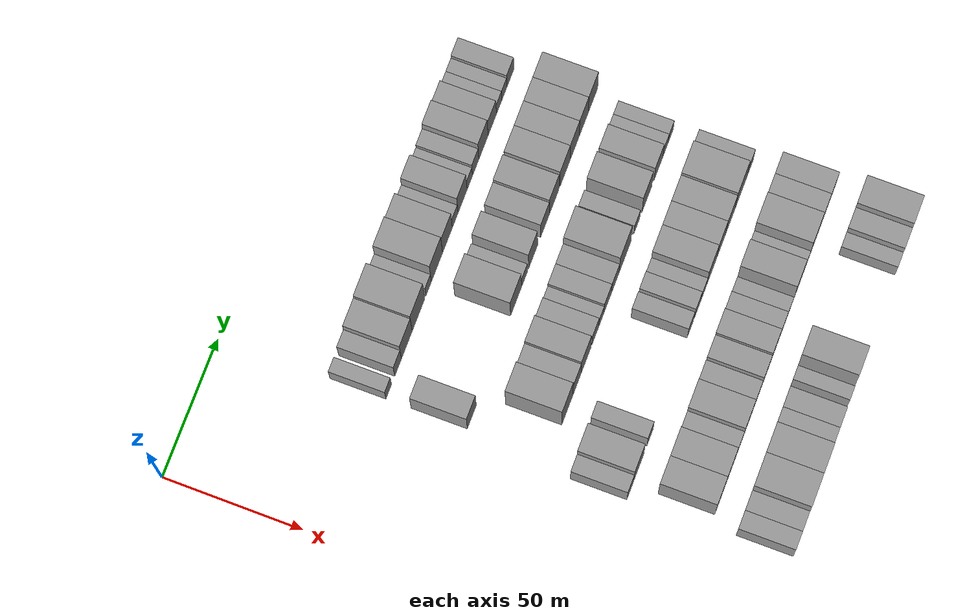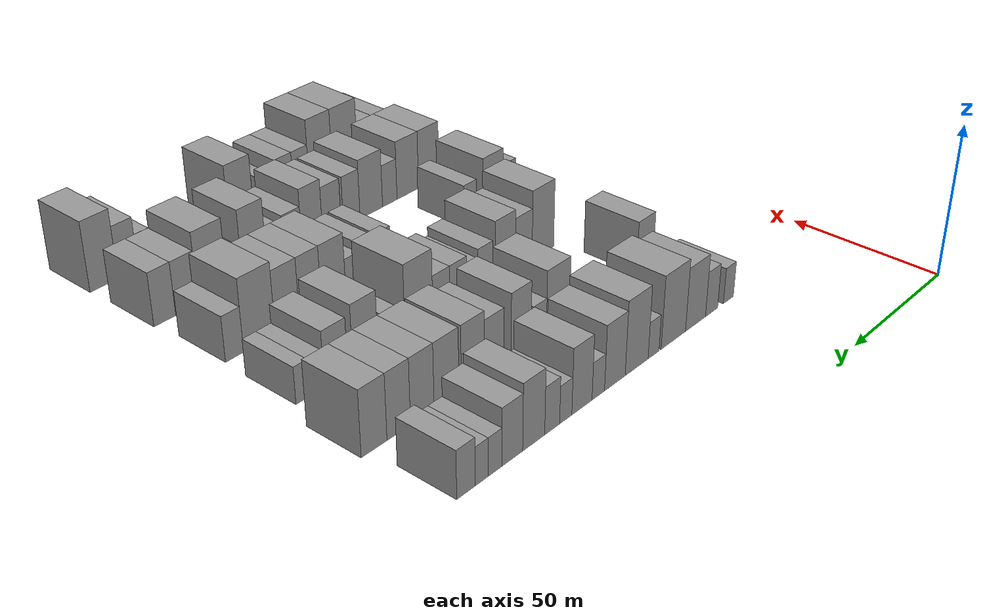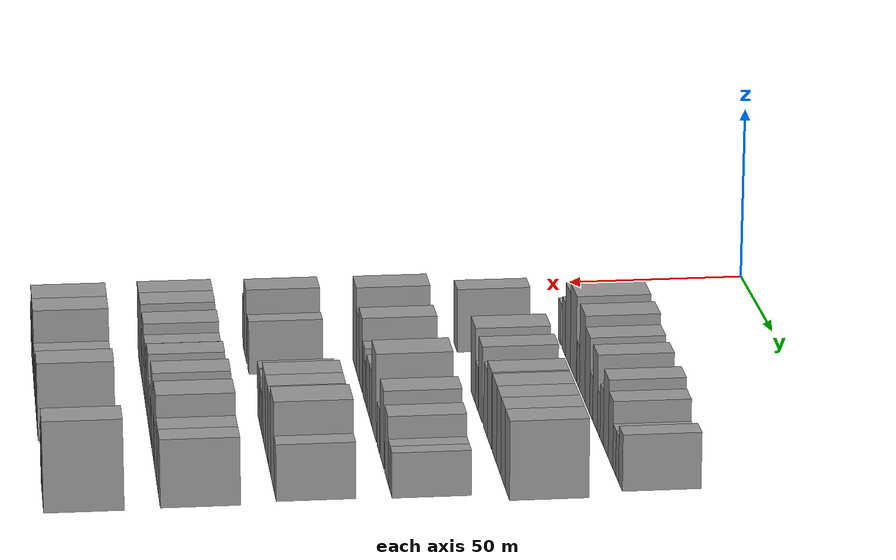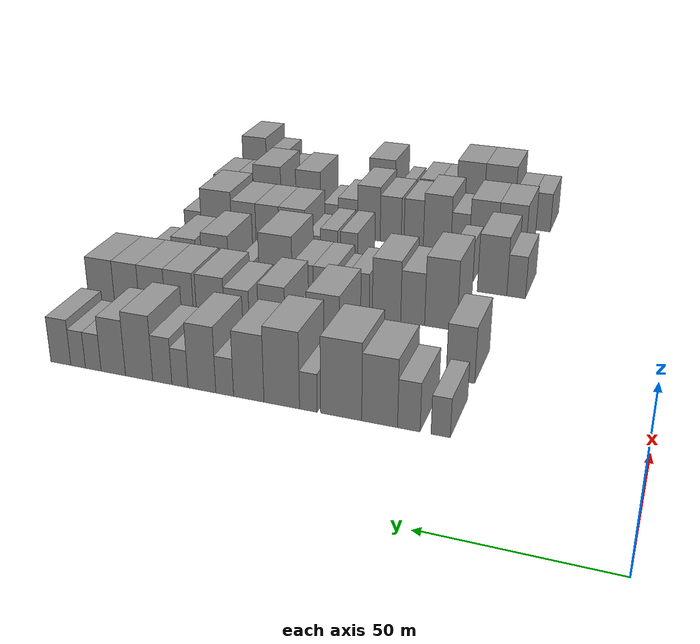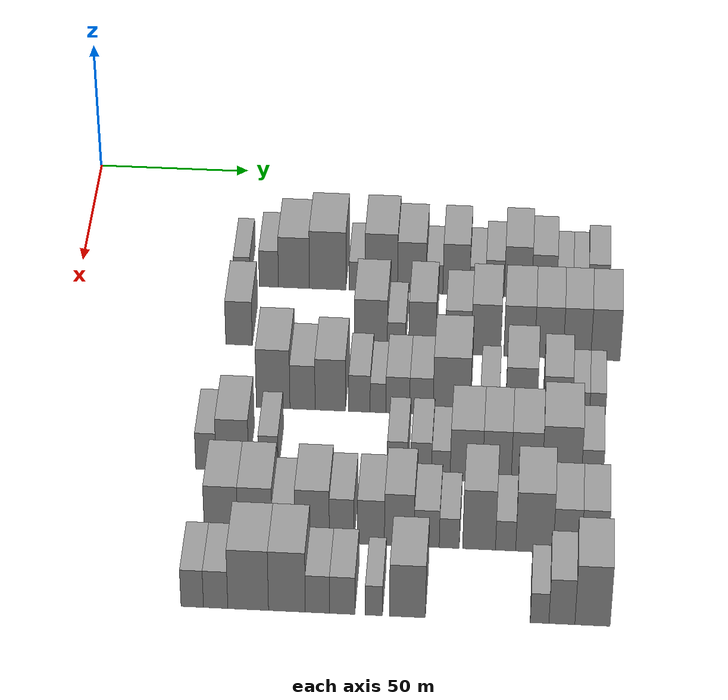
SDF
<sdf version="1.6">
 <world name="default">
  <model name="building_64">
   <static>1</static>
   <pose>50.0000 53.2719 0 0.000000 0.000000 0.000000</pose>
   <link name="link">
    <pose>0 0 6.00 0 0 0</pose>
    <collision name="collision"><geometry><box><size>20.0000 5.2601 12.0000</size></box></geometry></collision>
    <visual name="visual">
     <cast_shadows>0</cast_shadows>
     <geometry><box><size>20.0000 5.2601 12.0000</size></box></geometry>
     <material>
      <script>
       <uri>model://grey_wall/materials/scripts</uri>
       <uri>model://grey_wall/materials/textures</uri>
       <name>vrc/grey_wall</name>
      </script>
     </material>
    </visual>
   </link>
  </model>
  <model name="building_65">
   <static>1</static>
   <pose>50.0000 62.0381 0 0.000000 0.000000 0.000000</pose>
   <link name="link">
    <pose>0 0 7.50 0 0 0</pose>
    <collision name="collision"><geometry><box><size>20.0000 6.2723 15.0000</size></box></geometry></collision>
    <visual name="visual">
     <cast_shadows>0</cast_shadows>
     <geometry><box><size>20.0000 6.2723 15.0000</size></box></geometry>
     <material>
      <script>
       <uri>model://grey_wall/materials/scripts</uri>
       <uri>model://grey_wall/materials/textures</uri>
       <name>vrc/grey_wall</name>
      </script>
     </material>
    </visual>
   </link>
  </model>
  <model name="building_66">
   <static>1</static>
   <pose>50.0000 70.2058 0 0.000000 0.000000 0.000000</pose>
   <link name="link">
    <pose>0 0 10.50 0 0 0</pose>
    <collision name="collision"><geometry><box><size>20.0000 10.0632 21.0000</size></box></geometry></collision>
    <visual name="visual">
     <cast_shadows>0</cast_shadows>
     <geometry><box><size>20.0000 10.0632 21.0000</size></box></geometry>
     <material>
      <script>
       <uri>model://grey_wall/materials/scripts</uri>
       <uri>model://grey_wall/materials/textures</uri>
       <name>vrc/grey_wall</name>
      </script>
     </material>
    </visual>
   </link>
  </model>
  <model name="building_67">
   <static>1</static>
   <pose>50.0000 81.1623 0 0.000000 0.000000 0.000000</pose>
   <link name="link">
    <pose>0 0 12.00 0 0 0</pose>
    <collision name="collision"><geometry><box><size>20.0000 11.8498 24.0000</size></box></geometry></collision>
    <visual name="visual">
     <cast_shadows>0</cast_shadows>
     <geometry><box><size>20.0000 11.8498 24.0000</size></box></geometry>
     <material>
      <script>
       <uri>model://grey_wall/materials/scripts</uri>
       <uri>model://grey_wall/materials/textures</uri>
       <name>vrc/grey_wall</name>
      </script>
     </material>
    </visual>
   </link>
  </model>
  <model name="building_68">
   <static>1</static>
   <pose>50.0000 90.6826 0 0.000000 0.000000 0.000000</pose>
   <link name="link">
    <pose>0 0 6.00 0 0 0</pose>
    <collision name="collision"><geometry><box><size>20.0000 5.1908 12.0000</size></box></geometry></collision>
    <visual name="visual">
     <cast_shadows>0</cast_shadows>
     <geometry><box><size>20.0000 5.1908 12.0000</size></box></geometry>
     <material>
      <script>
       <uri>model://grey_wall/materials/scripts</uri>
       <uri>model://grey_wall/materials/textures</uri>
       <name>vrc/grey_wall</name>
      </script>
     </material>
    </visual>
   </link>
  </model>
  <model name="building_69">
   <static>1</static>
   <pose>50.0000 98.5675 0 0.000000 0.000000 0.000000</pose>
   <link name="link">
    <pose>0 0 12.00 0 0 0</pose>
    <collision name="collision"><geometry><box><size>20.0000 10.5790 24.0000</size></box></geometry></collision>
    <visual name="visual">
     <cast_shadows>0</cast_shadows>
     <geometry><box><size>20.0000 10.5790 24.0000</size></box></geometry>
     <material>
      <script>
       <uri>model://grey_wall/materials/scripts</uri>
       <uri>model://grey_wall/materials/textures</uri>
       <name>vrc/grey_wall</name>
      </script>
     </material>
    </visual>
   </link>
  </model>
  <model name="building_70">
   <static>1</static>
   <pose>50.0000 108.4797 0 0.000000 0.000000 0.000000</pose>
   <link name="link">
    <pose>0 0 10.50 0 0 0</pose>
    <collision name="collision"><geometry><box><size>20.0000 9.2453 21.0000</size></box></geometry></collision>
    <visual name="visual">
     <cast_shadows>0</cast_shadows>
     <geometry><box><size>20.0000 9.2453 21.0000</size></box></geometry>
     <material>
      <script>
       <uri>model://grey_wall/materials/scripts</uri>
       <uri>model://grey_wall/materials/textures</uri>
       <name>vrc/grey_wall</name>
      </script>
     </material>
    </visual>
   </link>
  </model>
  <model name="building_71">
   <static>1</static>
   <pose>50.0000 115.8319 0 0.000000 0.000000 0.000000</pose>
   <link name="link">
    <pose>0 0 6.00 0 0 0</pose>
    <collision name="collision"><geometry><box><size>20.0000 5.4591 12.0000</size></box></geometry></collision>
    <visual name="visual">
     <cast_shadows>0</cast_shadows>
     <geometry><box><size>20.0000 5.4591 12.0000</size></box></geometry>
     <material>
      <script>
       <uri>model://grey_wall/materials/scripts</uri>
       <uri>model://grey_wall/materials/textures</uri>
       <name>vrc/grey_wall</name>
      </script>
     </material>
    </visual>
   </link>
  </model>
  <model name="building_72">
   <static>1</static>
   <pose>50.0000 122.8837 0 0.000000 0.000000 0.000000</pose>
   <link name="link">
    <pose>0 0 10.50 0 0 0</pose>
    <collision name="collision"><geometry><box><size>20.0000 8.6444 21.0000</size></box></geometry></collision>
    <visual name="visual">
     <cast_shadows>0</cast_shadows>
     <geometry><box><size>20.0000 8.6444 21.0000</size></box></geometry>
     <material>
      <script>
       <uri>model://grey_wall/materials/scripts</uri>
       <uri>model://grey_wall/materials/textures</uri>
       <name>vrc/grey_wall</name>
      </script>
     </material>
    </visual>
   </link>
  </model>
  <model name="building_73">
   <static>1</static>
   <pose>50.0000 129.7595 0 0.000000 0.000000 0.000000</pose>
   <link name="link">
    <pose>0 0 6.00 0 0 0</pose>
    <collision name="collision"><geometry><box><size>20.0000 5.1073 12.0000</size></box></geometry></collision>
    <visual name="visual">
     <cast_shadows>0</cast_shadows>
     <geometry><box><size>20.0000 5.1073 12.0000</size></box></geometry>
     <material>
      <script>
       <uri>model://grey_wall/materials/scripts</uri>
       <uri>model://grey_wall/materials/textures</uri>
       <name>vrc/grey_wall</name>
      </script>
     </material>
    </visual>
   </link>
  </model>
  <model name="building_74">
   <static>1</static>
   <pose>50.0000 135.3687 0 0.000000 0.000000 0.000000</pose>
   <link name="link">
    <pose>0 0 7.50 0 0 0</pose>
    <collision name="collision"><geometry><box><size>20.0000 6.1111 15.0000</size></box></geometry></collision>
    <visual name="visual">
     <cast_shadows>0</cast_shadows>
     <geometry><box><size>20.0000 6.1111 15.0000</size></box></geometry>
     <material>
      <script>
       <uri>model://grey_wall/materials/scripts</uri>
       <uri>model://grey_wall/materials/textures</uri>
       <name>vrc/grey_wall</name>
      </script>
     </material>
    </visual>
   </link>
  </model>
  <model name="building_75">
   <static>1</static>
   <pose>50.0000 142.8387 0 0.000000 0.000000 0.000000</pose>
   <link name="link">
    <pose>0 0 10.50 0 0 0</pose>
    <collision name="collision"><geometry><box><size>20.0000 8.8288 21.0000</size></box></geometry></collision>
    <visual name="visual">
     <cast_shadows>0</cast_shadows>
     <geometry><box><size>20.0000 8.8288 21.0000</size></box></geometry>
     <material>
      <script>
       <uri>model://grey_wall/materials/scripts</uri>
       <uri>model://grey_wall/materials/textures</uri>
       <name>vrc/grey_wall</name>
      </script>
     </material>
    </visual>
   </link>
  </model>
  <model name="building_76">
   <static>1</static>
   <pose>50.0000 151.2692 0 0.000000 0.000000 0.000000</pose>
   <link name="link">
    <pose>0 0 9.00 0 0 0</pose>
    <collision name="collision"><geometry><box><size>20.0000 8.0323 18.0000</size></box></geometry></collision>
    <visual name="visual">
     <cast_shadows>0</cast_shadows>
     <geometry><box><size>20.0000 8.0323 18.0000</size></box></geometry>
     <material>
      <script>
       <uri>model://grey_wall/materials/scripts</uri>
       <uri>model://grey_wall/materials/textures</uri>
       <name>vrc/grey_wall</name>
      </script>
     </material>
    </visual>
   </link>
  </model>
  <model name="building_77">
   <static>1</static>
   <pose>50.0000 157.8927 0 0.000000 0.000000 0.000000</pose>
   <link name="link">
    <pose>0 0 6.00 0 0 0</pose>
    <collision name="collision"><geometry><box><size>20.0000 5.2147 12.0000</size></box></geometry></collision>
    <visual name="visual">
     <cast_shadows>0</cast_shadows>
     <geometry><box><size>20.0000 5.2147 12.0000</size></box></geometry>
     <material>
      <script>
       <uri>model://grey_wall/materials/scripts</uri>
       <uri>model://grey_wall/materials/textures</uri>
       <name>vrc/grey_wall</name>
      </script>
     </material>
    </visual>
   </link>
  </model>
  <model name="building_78">
   <static>1</static>
   <pose>50.0000 162.9480 0 0.000000 0.000000 0.000000</pose>
   <link name="link">
    <pose>0 0 6.00 0 0 0</pose>
    <collision name="collision"><geometry><box><size>20.0000 4.8960 12.0000</size></box></geometry></collision>
    <visual name="visual">
     <cast_shadows>0</cast_shadows>
     <geometry><box><size>20.0000 4.8960 12.0000</size></box></geometry>
     <material>
      <script>
       <uri>model://grey_wall/materials/scripts</uri>
       <uri>model://grey_wall/materials/textures</uri>
       <name>vrc/grey_wall</name>
      </script>
     </material>
    </visual>
   </link>
  </model>
  <model name="building_79">
   <static>1</static>
   <pose>50.0000 168.7888 0 0.000000 0.000000 0.000000</pose>
   <link name="link">
    <pose>0 0 7.50 0 0 0</pose>
    <collision name="collision"><geometry><box><size>20.0000 6.7857 15.0000</size></box></geometry></collision>
    <visual name="visual">
     <cast_shadows>0</cast_shadows>
     <geometry><box><size>20.0000 6.7857 15.0000</size></box></geometry>
     <material>
      <script>
       <uri>model://grey_wall/materials/scripts</uri>
       <uri>model://grey_wall/materials/textures</uri>
       <name>vrc/grey_wall</name>
      </script>
     </material>
    </visual>
   </link>
  </model>
  <model name="building_181">
   <static>1</static>
   <pose>79.0000 54.9197 0 0.000000 0.000000 0.000000</pose>
   <link name="link">
    <pose>0 0 9.00 0 0 0</pose>
    <collision name="collision"><geometry><box><size>20.0000 8.4533 18.0000</size></box></geometry></collision>
    <visual name="visual">
     <cast_shadows>0</cast_shadows>
     <geometry><box><size>20.0000 8.4533 18.0000</size></box></geometry>
     <material>
      <script>
       <uri>model://grey_wall/materials/scripts</uri>
       <uri>model://grey_wall/materials/textures</uri>
       <name>vrc/grey_wall</name>
      </script>
     </material>
    </visual>
   </link>
  </model>
  <model name="building_182">
   <static>1</static>
   <pose>79.0000 96.8794 0 0.000000 0.000000 0.000000</pose>
   <link name="link">
    <pose>0 0 10.50 0 0 0</pose>
    <collision name="collision"><geometry><box><size>20.0000 10.4888 21.0000</size></box></geometry></collision>
    <visual name="visual">
     <cast_shadows>0</cast_shadows>
     <geometry><box><size>20.0000 10.4888 21.0000</size></box></geometry>
     <material>
      <script>
       <uri>model://grey_wall/materials/scripts</uri>
       <uri>model://grey_wall/materials/textures</uri>
       <name>vrc/grey_wall</name>
      </script>
     </material>
    </visual>
   </link>
  </model>
  <model name="building_183">
   <static>1</static>
   <pose>79.0000 105.0208 0 0.000000 0.000000 0.000000</pose>
   <link name="link">
    <pose>0 0 6.00 0 0 0</pose>
    <collision name="collision"><geometry><box><size>20.0000 5.7940 12.0000</size></box></geometry></collision>
    <visual name="visual">
     <cast_shadows>0</cast_shadows>
     <geometry><box><size>20.0000 5.7940 12.0000</size></box></geometry>
     <material>
      <script>
       <uri>model://grey_wall/materials/scripts</uri>
       <uri>model://grey_wall/materials/textures</uri>
       <name>vrc/grey_wall</name>
      </script>
     </material>
    </visual>
   </link>
  </model>
  <model name="building_184">
   <static>1</static>
   <pose>79.0000 113.2284 0 0.000000 0.000000 0.000000</pose>
   <link name="link">
    <pose>0 0 10.50 0 0 0</pose>
    <collision name="collision"><geometry><box><size>20.0000 8.6211 21.0000</size></box></geometry></collision>
    <visual name="visual">
     <cast_shadows>0</cast_shadows>
     <geometry><box><size>20.0000 8.6211 21.0000</size></box></geometry>
     <material>
      <script>
       <uri>model://grey_wall/materials/scripts</uri>
       <uri>model://grey_wall/materials/textures</uri>
       <name>vrc/grey_wall</name>
      </script>
     </material>
    </visual>
   </link>
  </model>
  <model name="building_185">
   <static>1</static>
   <pose>79.0000 124.6637 0 0.000000 0.000000 0.000000</pose>
   <link name="link">
    <pose>0 0 9.00 0 0 0</pose>
    <collision name="collision"><geometry><box><size>20.0000 8.2496 18.0000</size></box></geometry></collision>
    <visual name="visual">
     <cast_shadows>0</cast_shadows>
     <geometry><box><size>20.0000 8.2496 18.0000</size></box></geometry>
     <material>
      <script>
       <uri>model://grey_wall/materials/scripts</uri>
       <uri>model://grey_wall/materials/textures</uri>
       <name>vrc/grey_wall</name>
      </script>
     </material>
    </visual>
   </link>
  </model>
  <model name="building_186">
   <static>1</static>
   <pose>79.0000 133.4465 0 0.000000 0.000000 0.000000</pose>
   <link name="link">
    <pose>0 0 10.50 0 0 0</pose>
    <collision name="collision"><geometry><box><size>20.0000 9.3159 21.0000</size></box></geometry></collision>
    <visual name="visual">
     <cast_shadows>0</cast_shadows>
     <geometry><box><size>20.0000 9.3159 21.0000</size></box></geometry>
     <material>
      <script>
       <uri>model://grey_wall/materials/scripts</uri>
       <uri>model://grey_wall/materials/textures</uri>
       <name>vrc/grey_wall</name>
      </script>
     </material>
    </visual>
   </link>
  </model>
  <model name="building_187">
   <static>1</static>
   <pose>79.0000 143.9744 0 0.000000 0.000000 0.000000</pose>
   <link name="link">
    <pose>0 0 10.50 0 0 0</pose>
    <collision name="collision"><geometry><box><size>20.0000 9.7400 21.0000</size></box></geometry></collision>
    <visual name="visual">
     <cast_shadows>0</cast_shadows>
     <geometry><box><size>20.0000 9.7400 21.0000</size></box></geometry>
     <material>
      <script>
       <uri>model://grey_wall/materials/scripts</uri>
       <uri>model://grey_wall/materials/textures</uri>
       <name>vrc/grey_wall</name>
      </script>
     </material>
    </visual>
   </link>
  </model>
  <model name="building_188">
   <static>1</static>
   <pose>79.0000 153.3531 0 0.000000 0.000000 0.000000</pose>
   <link name="link">
    <pose>0 0 10.50 0 0 0</pose>
    <collision name="collision"><geometry><box><size>20.0000 9.0175 21.0000</size></box></geometry></collision>
    <visual name="visual">
     <cast_shadows>0</cast_shadows>
     <geometry><box><size>20.0000 9.0175 21.0000</size></box></geometry>
     <material>
      <script>
       <uri>model://grey_wall/materials/scripts</uri>
       <uri>model://grey_wall/materials/textures</uri>
       <name>vrc/grey_wall</name>
      </script>
     </material>
    </visual>
   </link>
  </model>
  <model name="building_189">
   <static>1</static>
   <pose>79.0000 162.2272 0 0.000000 0.000000 0.000000</pose>
   <link name="link">
    <pose>0 0 10.50 0 0 0</pose>
    <collision name="collision"><geometry><box><size>20.0000 8.7307 21.0000</size></box></geometry></collision>
    <visual name="visual">
     <cast_shadows>0</cast_shadows>
     <geometry><box><size>20.0000 8.7307 21.0000</size></box></geometry>
     <material>
      <script>
       <uri>model://grey_wall/materials/scripts</uri>
       <uri>model://grey_wall/materials/textures</uri>
       <name>vrc/grey_wall</name>
      </script>
     </material>
    </visual>
   </link>
  </model>
  <model name="building_190">
   <static>1</static>
   <pose>79.0000 171.2394 0 0.000000 0.000000 0.000000</pose>
   <link name="link">
    <pose>0 0 10.50 0 0 0</pose>
    <collision name="collision"><geometry><box><size>20.0000 9.2937 21.0000</size></box></geometry></collision>
    <visual name="visual">
     <cast_shadows>0</cast_shadows>
     <geometry><box><size>20.0000 9.2937 21.0000</size></box></geometry>
     <material>
      <script>
       <uri>model://grey_wall/materials/scripts</uri>
       <uri>model://grey_wall/materials/textures</uri>
       <name>vrc/grey_wall</name>
      </script>
     </material>
    </visual>
   </link>
  </model>
  <model name="building_293">
   <static>1</static>
   <pose>108.0000 68.1563 0 0.000000 0.000000 0.000000</pose>
   <link name="link">
    <pose>0 0 12.00 0 0 0</pose>
    <collision name="collision"><geometry><box><size>20.0000 10.4770 24.0000</size></box></geometry></collision>
    <visual name="visual">
     <cast_shadows>0</cast_shadows>
     <geometry><box><size>20.0000 10.4770 24.0000</size></box></geometry>
     <material>
      <script>
       <uri>model://grey_wall/materials/scripts</uri>
       <uri>model://grey_wall/materials/textures</uri>
       <name>vrc/grey_wall</name>
      </script>
     </material>
    </visual>
   </link>
  </model>
  <model name="building_294">
   <static>1</static>
   <pose>108.0000 77.3162 0 0.000000 0.000000 0.000000</pose>
   <link name="link">
    <pose>0 0 9.00 0 0 0</pose>
    <collision name="collision"><geometry><box><size>20.0000 7.8428 18.0000</size></box></geometry></collision>
    <visual name="visual">
     <cast_shadows>0</cast_shadows>
     <geometry><box><size>20.0000 7.8428 18.0000</size></box></geometry>
     <material>
      <script>
       <uri>model://grey_wall/materials/scripts</uri>
       <uri>model://grey_wall/materials/textures</uri>
       <name>vrc/grey_wall</name>
      </script>
     </material>
    </visual>
   </link>
  </model>
  <model name="building_295">
   <static>1</static>
   <pose>108.0000 85.9609 0 0.000000 0.000000 0.000000</pose>
   <link name="link">
    <pose>0 0 10.50 0 0 0</pose>
    <collision name="collision"><geometry><box><size>20.0000 9.4466 21.0000</size></box></geometry></collision>
    <visual name="visual">
     <cast_shadows>0</cast_shadows>
     <geometry><box><size>20.0000 9.4466 21.0000</size></box></geometry>
     <material>
      <script>
       <uri>model://grey_wall/materials/scripts</uri>
       <uri>model://grey_wall/materials/textures</uri>
       <name>vrc/grey_wall</name>
      </script>
     </material>
    </visual>
   </link>
  </model>
  <model name="building_296">
   <static>1</static>
   <pose>108.0000 95.0334 0 0.000000 0.000000 0.000000</pose>
   <link name="link">
    <pose>0 0 7.50 0 0 0</pose>
    <collision name="collision"><geometry><box><size>20.0000 6.6984 15.0000</size></box></geometry></collision>
    <visual name="visual">
     <cast_shadows>0</cast_shadows>
     <geometry><box><size>20.0000 6.6984 15.0000</size></box></geometry>
     <material>
      <script>
       <uri>model://grey_wall/materials/scripts</uri>
       <uri>model://grey_wall/materials/textures</uri>
       <name>vrc/grey_wall</name>
      </script>
     </material>
    </visual>
   </link>
  </model>
  <model name="building_297">
   <static>1</static>
   <pose>108.0000 100.8277 0 0.000000 0.000000 0.000000</pose>
   <link name="link">
    <pose>0 0 6.00 0 0 0</pose>
    <collision name="collision"><geometry><box><size>20.0000 4.8903 12.0000</size></box></geometry></collision>
    <visual name="visual">
     <cast_shadows>0</cast_shadows>
     <geometry><box><size>20.0000 4.8903 12.0000</size></box></geometry>
     <material>
      <script>
       <uri>model://grey_wall/materials/scripts</uri>
       <uri>model://grey_wall/materials/textures</uri>
       <name>vrc/grey_wall</name>
      </script>
     </material>
    </visual>
   </link>
  </model>
  <model name="building_298">
   <static>1</static>
   <pose>108.0000 106.9651 0 0.000000 0.000000 0.000000</pose>
   <link name="link">
    <pose>0 0 7.50 0 0 0</pose>
    <collision name="collision"><geometry><box><size>20.0000 7.3845 15.0000</size></box></geometry></collision>
    <visual name="visual">
     <cast_shadows>0</cast_shadows>
     <geometry><box><size>20.0000 7.3845 15.0000</size></box></geometry>
     <material>
      <script>
       <uri>model://grey_wall/materials/scripts</uri>
       <uri>model://grey_wall/materials/textures</uri>
       <name>vrc/grey_wall</name>
      </script>
     </material>
    </visual>
   </link>
  </model>
  <model name="building_299">
   <static>1</static>
   <pose>108.0000 114.3063 0 0.000000 0.000000 0.000000</pose>
   <link name="link">
    <pose>0 0 7.50 0 0 0</pose>
    <collision name="collision"><geometry><box><size>20.0000 7.2978 15.0000</size></box></geometry></collision>
    <visual name="visual">
     <cast_shadows>0</cast_shadows>
     <geometry><box><size>20.0000 7.2978 15.0000</size></box></geometry>
     <material>
      <script>
       <uri>model://grey_wall/materials/scripts</uri>
       <uri>model://grey_wall/materials/textures</uri>
       <name>vrc/grey_wall</name>
      </script>
     </material>
    </visual>
   </link>
  </model>
  <model name="building_300">
   <static>1</static>
   <pose>108.0000 123.7310 0 0.000000 0.000000 0.000000</pose>
   <link name="link">
    <pose>0 0 12.00 0 0 0</pose>
    <collision name="collision"><geometry><box><size>20.0000 11.5516 24.0000</size></box></geometry></collision>
    <visual name="visual">
     <cast_shadows>0</cast_shadows>
     <geometry><box><size>20.0000 11.5516 24.0000</size></box></geometry>
     <material>
      <script>
       <uri>model://grey_wall/materials/scripts</uri>
       <uri>model://grey_wall/materials/textures</uri>
       <name>vrc/grey_wall</name>
      </script>
     </material>
    </visual>
   </link>
  </model>
  <model name="building_301">
   <static>1</static>
   <pose>108.0000 135.4316 0 0.000000 0.000000 0.000000</pose>
   <link name="link">
    <pose>0 0 6.00 0 0 0</pose>
    <collision name="collision"><geometry><box><size>20.0000 5.8496 12.0000</size></box></geometry></collision>
    <visual name="visual">
     <cast_shadows>0</cast_shadows>
     <geometry><box><size>20.0000 5.8496 12.0000</size></box></geometry>
     <material>
      <script>
       <uri>model://grey_wall/materials/scripts</uri>
       <uri>model://grey_wall/materials/textures</uri>
       <name>vrc/grey_wall</name>
      </script>
     </material>
    </visual>
   </link>
  </model>
  <model name="building_302">
   <static>1</static>
   <pose>108.0000 145.2150 0 0.000000 0.000000 0.000000</pose>
   <link name="link">
    <pose>0 0 10.50 0 0 0</pose>
    <collision name="collision"><geometry><box><size>20.0000 9.7173 21.0000</size></box></geometry></collision>
    <visual name="visual">
     <cast_shadows>0</cast_shadows>
     <geometry><box><size>20.0000 9.7173 21.0000</size></box></geometry>
     <material>
      <script>
       <uri>model://grey_wall/materials/scripts</uri>
       <uri>model://grey_wall/materials/textures</uri>
       <name>vrc/grey_wall</name>
      </script>
     </material>
    </visual>
   </link>
  </model>
  <model name="building_303">
   <static>1</static>
   <pose>108.0000 156.4955 0 0.000000 0.000000 0.000000</pose>
   <link name="link">
    <pose>0 0 9.00 0 0 0</pose>
    <collision name="collision"><geometry><box><size>20.0000 8.8435 18.0000</size></box></geometry></collision>
    <visual name="visual">
     <cast_shadows>0</cast_shadows>
     <geometry><box><size>20.0000 8.8435 18.0000</size></box></geometry>
     <material>
      <script>
       <uri>model://grey_wall/materials/scripts</uri>
       <uri>model://grey_wall/materials/textures</uri>
       <name>vrc/grey_wall</name>
      </script>
     </material>
    </visual>
   </link>
  </model>
  <model name="building_304">
   <static>1</static>
   <pose>108.0000 163.6061 0 0.000000 0.000000 0.000000</pose>
   <link name="link">
    <pose>0 0 6.00 0 0 0</pose>
    <collision name="collision"><geometry><box><size>20.0000 5.3777 12.0000</size></box></geometry></collision>
    <visual name="visual">
     <cast_shadows>0</cast_shadows>
     <geometry><box><size>20.0000 5.3777 12.0000</size></box></geometry>
     <material>
      <script>
       <uri>model://grey_wall/materials/scripts</uri>
       <uri>model://grey_wall/materials/textures</uri>
       <name>vrc/grey_wall</name>
      </script>
     </material>
    </visual>
   </link>
  </model>
  <model name="building_305">
   <static>1</static>
   <pose>108.0000 168.7678 0 0.000000 0.000000 0.000000</pose>
   <link name="link">
    <pose>0 0 6.00 0 0 0</pose>
    <collision name="collision"><geometry><box><size>20.0000 4.9457 12.0000</size></box></geometry></collision>
    <visual name="visual">
     <cast_shadows>0</cast_shadows>
     <geometry><box><size>20.0000 4.9457 12.0000</size></box></geometry>
     <material>
      <script>
       <uri>model://grey_wall/materials/scripts</uri>
       <uri>model://grey_wall/materials/textures</uri>
       <name>vrc/grey_wall</name>
      </script>
     </material>
    </visual>
   </link>
  </model>
  <model name="building_402">
   <static>1</static>
   <pose>137.0000 49.9952 0 0.000000 0.000000 0.000000</pose>
   <link name="link">
    <pose>0 0 7.50 0 0 0</pose>
    <collision name="collision"><geometry><box><size>20.0000 6.2336 15.0000</size></box></geometry></collision>
    <visual name="visual">
     <cast_shadows>0</cast_shadows>
     <geometry><box><size>20.0000 6.2336 15.0000</size></box></geometry>
     <material>
      <script>
       <uri>model://grey_wall/materials/scripts</uri>
       <uri>model://grey_wall/materials/textures</uri>
       <name>vrc/grey_wall</name>
      </script>
     </material>
    </visual>
   </link>
  </model>
  <model name="building_403">
   <static>1</static>
   <pose>137.0000 58.0871 0 0.000000 0.000000 0.000000</pose>
   <link name="link">
    <pose>0 0 10.50 0 0 0</pose>
    <collision name="collision"><geometry><box><size>20.0000 9.9502 21.0000</size></box></geometry></collision>
    <visual name="visual">
     <cast_shadows>0</cast_shadows>
     <geometry><box><size>20.0000 9.9502 21.0000</size></box></geometry>
     <material>
      <script>
       <uri>model://grey_wall/materials/scripts</uri>
       <uri>model://grey_wall/materials/textures</uri>
       <name>vrc/grey_wall</name>
      </script>
     </material>
    </visual>
   </link>
  </model>
  <model name="building_404">
   <static>1</static>
   <pose>137.0000 69.0842 0 0.000000 0.000000 0.000000</pose>
   <link name="link">
    <pose>0 0 7.50 0 0 0</pose>
    <collision name="collision"><geometry><box><size>20.0000 6.0440 15.0000</size></box></geometry></collision>
    <visual name="visual">
     <cast_shadows>0</cast_shadows>
     <geometry><box><size>20.0000 6.0440 15.0000</size></box></geometry>
     <material>
      <script>
       <uri>model://grey_wall/materials/scripts</uri>
       <uri>model://grey_wall/materials/textures</uri>
       <name>vrc/grey_wall</name>
      </script>
     </material>
    </visual>
   </link>
  </model>
  <model name="building_405">
   <static>1</static>
   <pose>137.0000 108.3462 0 0.000000 0.000000 0.000000</pose>
   <link name="link">
    <pose>0 0 7.50 0 0 0</pose>
    <collision name="collision"><geometry><box><size>20.0000 6.1600 15.0000</size></box></geometry></collision>
    <visual name="visual">
     <cast_shadows>0</cast_shadows>
     <geometry><box><size>20.0000 6.1600 15.0000</size></box></geometry>
     <material>
      <script>
       <uri>model://grey_wall/materials/scripts</uri>
       <uri>model://grey_wall/materials/textures</uri>
       <name>vrc/grey_wall</name>
      </script>
     </material>
    </visual>
   </link>
  </model>
  <model name="building_406">
   <static>1</static>
   <pose>137.0000 115.5920 0 0.000000 0.000000 0.000000</pose>
   <link name="link">
    <pose>0 0 7.50 0 0 0</pose>
    <collision name="collision"><geometry><box><size>20.0000 6.3317 15.0000</size></box></geometry></collision>
    <visual name="visual">
     <cast_shadows>0</cast_shadows>
     <geometry><box><size>20.0000 6.3317 15.0000</size></box></geometry>
     <material>
      <script>
       <uri>model://grey_wall/materials/scripts</uri>
       <uri>model://grey_wall/materials/textures</uri>
       <name>vrc/grey_wall</name>
      </script>
     </material>
    </visual>
   </link>
  </model>
  <model name="building_407">
   <static>1</static>
   <pose>137.0000 121.5778 0 0.000000 0.000000 0.000000</pose>
   <link name="link">
    <pose>0 0 6.00 0 0 0</pose>
    <collision name="collision"><geometry><box><size>20.0000 5.6400 12.0000</size></box></geometry></collision>
    <visual name="visual">
     <cast_shadows>0</cast_shadows>
     <geometry><box><size>20.0000 5.6400 12.0000</size></box></geometry>
     <material>
      <script>
       <uri>model://grey_wall/materials/scripts</uri>
       <uri>model://grey_wall/materials/textures</uri>
       <name>vrc/grey_wall</name>
      </script>
     </material>
    </visual>
   </link>
  </model>
  <model name="building_408">
   <static>1</static>
   <pose>137.0000 129.3278 0 0.000000 0.000000 0.000000</pose>
   <link name="link">
    <pose>0 0 10.50 0 0 0</pose>
    <collision name="collision"><geometry><box><size>20.0000 9.8599 21.0000</size></box></geometry></collision>
    <visual name="visual">
     <cast_shadows>0</cast_shadows>
     <geometry><box><size>20.0000 9.8599 21.0000</size></box></geometry>
     <material>
      <script>
       <uri>model://grey_wall/materials/scripts</uri>
       <uri>model://grey_wall/materials/textures</uri>
       <name>vrc/grey_wall</name>
      </script>
     </material>
    </visual>
   </link>
  </model>
  <model name="building_409">
   <static>1</static>
   <pose>137.0000 138.5922 0 0.000000 0.000000 0.000000</pose>
   <link name="link">
    <pose>0 0 10.50 0 0 0</pose>
    <collision name="collision"><geometry><box><size>20.0000 8.6690 21.0000</size></box></geometry></collision>
    <visual name="visual">
     <cast_shadows>0</cast_shadows>
     <geometry><box><size>20.0000 8.6690 21.0000</size></box></geometry>
     <material>
      <script>
       <uri>model://grey_wall/materials/scripts</uri>
       <uri>model://grey_wall/materials/textures</uri>
       <name>vrc/grey_wall</name>
      </script>
     </material>
    </visual>
   </link>
  </model>
  <model name="building_410">
   <static>1</static>
   <pose>137.0000 147.5931 0 0.000000 0.000000 0.000000</pose>
   <link name="link">
    <pose>0 0 10.50 0 0 0</pose>
    <collision name="collision"><geometry><box><size>20.0000 9.3328 21.0000</size></box></geometry></collision>
    <visual name="visual">
     <cast_shadows>0</cast_shadows>
     <geometry><box><size>20.0000 9.3328 21.0000</size></box></geometry>
     <material>
      <script>
       <uri>model://grey_wall/materials/scripts</uri>
       <uri>model://grey_wall/materials/textures</uri>
       <name>vrc/grey_wall</name>
      </script>
     </material>
    </visual>
   </link>
  </model>
  <model name="building_411">
   <static>1</static>
   <pose>137.0000 158.1646 0 0.000000 0.000000 0.000000</pose>
   <link name="link">
    <pose>0 0 12.00 0 0 0</pose>
    <collision name="collision"><geometry><box><size>20.0000 11.8102 24.0000</size></box></geometry></collision>
    <visual name="visual">
     <cast_shadows>0</cast_shadows>
     <geometry><box><size>20.0000 11.8102 24.0000</size></box></geometry>
     <material>
      <script>
       <uri>model://grey_wall/materials/scripts</uri>
       <uri>model://grey_wall/materials/textures</uri>
       <name>vrc/grey_wall</name>
      </script>
     </material>
    </visual>
   </link>
  </model>
  <model name="building_412">
   <static>1</static>
   <pose>137.0000 167.3487 0 0.000000 0.000000 0.000000</pose>
   <link name="link">
    <pose>0 0 7.50 0 0 0</pose>
    <collision name="collision"><geometry><box><size>20.0000 6.5581 15.0000</size></box></geometry></collision>
    <visual name="visual">
     <cast_shadows>0</cast_shadows>
     <geometry><box><size>20.0000 6.5581 15.0000</size></box></geometry>
     <material>
      <script>
       <uri>model://grey_wall/materials/scripts</uri>
       <uri>model://grey_wall/materials/textures</uri>
       <name>vrc/grey_wall</name>
      </script>
     </material>
    </visual>
   </link>
  </model>
  <model name="building_513">
   <static>1</static>
   <pose>166.0000 57.3737 0 0.000000 0.000000 0.000000</pose>
   <link name="link">
    <pose>0 0 10.50 0 0 0</pose>
    <collision name="collision"><geometry><box><size>20.0000 9.9830 21.0000</size></box></geometry></collision>
    <visual name="visual">
     <cast_shadows>0</cast_shadows>
     <geometry><box><size>20.0000 9.9830 21.0000</size></box></geometry>
     <material>
      <script>
       <uri>model://grey_wall/materials/scripts</uri>
       <uri>model://grey_wall/materials/textures</uri>
       <name>vrc/grey_wall</name>
      </script>
     </material>
    </visual>
   </link>
  </model>
  <model name="building_514">
   <static>1</static>
   <pose>166.0000 67.4883 0 0.000000 0.000000 0.000000</pose>
   <link name="link">
    <pose>0 0 10.50 0 0 0</pose>
    <collision name="collision"><geometry><box><size>20.0000 10.2461 21.0000</size></box></geometry></collision>
    <visual name="visual">
     <cast_shadows>0</cast_shadows>
     <geometry><box><size>20.0000 10.2461 21.0000</size></box></geometry>
     <material>
      <script>
       <uri>model://grey_wall/materials/scripts</uri>
       <uri>model://grey_wall/materials/textures</uri>
       <name>vrc/grey_wall</name>
      </script>
     </material>
    </visual>
   </link>
  </model>
  <model name="building_515">
   <static>1</static>
   <pose>166.0000 75.9964 0 0.000000 0.000000 0.000000</pose>
   <link name="link">
    <pose>0 0 7.50 0 0 0</pose>
    <collision name="collision"><geometry><box><size>20.0000 6.7702 15.0000</size></box></geometry></collision>
    <visual name="visual">
     <cast_shadows>0</cast_shadows>
     <geometry><box><size>20.0000 6.7702 15.0000</size></box></geometry>
     <material>
      <script>
       <uri>model://grey_wall/materials/scripts</uri>
       <uri>model://grey_wall/materials/textures</uri>
       <name>vrc/grey_wall</name>
      </script>
     </material>
    </visual>
   </link>
  </model>
  <model name="building_516">
   <static>1</static>
   <pose>166.0000 84.5080 0 0.000000 0.000000 0.000000</pose>
   <link name="link">
    <pose>0 0 10.50 0 0 0</pose>
    <collision name="collision"><geometry><box><size>20.0000 10.2530 21.0000</size></box></geometry></collision>
    <visual name="visual">
     <cast_shadows>0</cast_shadows>
     <geometry><box><size>20.0000 10.2530 21.0000</size></box></geometry>
     <material>
      <script>
       <uri>model://grey_wall/materials/scripts</uri>
       <uri>model://grey_wall/materials/textures</uri>
       <name>vrc/grey_wall</name>
      </script>
     </material>
    </visual>
   </link>
  </model>
  <model name="building_517">
   <static>1</static>
   <pose>166.0000 93.3087 0 0.000000 0.000000 0.000000</pose>
   <link name="link">
    <pose>0 0 9.00 0 0 0</pose>
    <collision name="collision"><geometry><box><size>20.0000 7.3483 18.0000</size></box></geometry></collision>
    <visual name="visual">
     <cast_shadows>0</cast_shadows>
     <geometry><box><size>20.0000 7.3483 18.0000</size></box></geometry>
     <material>
      <script>
       <uri>model://grey_wall/materials/scripts</uri>
       <uri>model://grey_wall/materials/textures</uri>
       <name>vrc/grey_wall</name>
      </script>
     </material>
    </visual>
   </link>
  </model>
  <model name="building_518">
   <static>1</static>
   <pose>166.0000 102.0078 0 0.000000 0.000000 0.000000</pose>
   <link name="link">
    <pose>0 0 9.00 0 0 0</pose>
    <collision name="collision"><geometry><box><size>20.0000 8.0500 18.0000</size></box></geometry></collision>
    <visual name="visual">
     <cast_shadows>0</cast_shadows>
     <geometry><box><size>20.0000 8.0500 18.0000</size></box></geometry>
     <material>
      <script>
       <uri>model://grey_wall/materials/scripts</uri>
       <uri>model://grey_wall/materials/textures</uri>
       <name>vrc/grey_wall</name>
      </script>
     </material>
    </visual>
   </link>
  </model>
  <model name="building_519">
   <static>1</static>
   <pose>166.0000 110.4397 0 0.000000 0.000000 0.000000</pose>
   <link name="link">
    <pose>0 0 10.50 0 0 0</pose>
    <collision name="collision"><geometry><box><size>20.0000 8.8137 21.0000</size></box></geometry></collision>
    <visual name="visual">
     <cast_shadows>0</cast_shadows>
     <geometry><box><size>20.0000 8.8137 21.0000</size></box></geometry>
     <material>
      <script>
       <uri>model://grey_wall/materials/scripts</uri>
       <uri>model://grey_wall/materials/textures</uri>
       <name>vrc/grey_wall</name>
      </script>
     </material>
    </visual>
   </link>
  </model>
  <model name="building_520">
   <static>1</static>
   <pose>166.0000 118.5951 0 0.000000 0.000000 0.000000</pose>
   <link name="link">
    <pose>0 0 7.50 0 0 0</pose>
    <collision name="collision"><geometry><box><size>20.0000 7.4972 15.0000</size></box></geometry></collision>
    <visual name="visual">
     <cast_shadows>0</cast_shadows>
     <geometry><box><size>20.0000 7.4972 15.0000</size></box></geometry>
     <material>
      <script>
       <uri>model://grey_wall/materials/scripts</uri>
       <uri>model://grey_wall/materials/textures</uri>
       <name>vrc/grey_wall</name>
      </script>
     </material>
    </visual>
   </link>
  </model>
  <model name="building_521">
   <static>1</static>
   <pose>166.0000 125.3193 0 0.000000 0.000000 0.000000</pose>
   <link name="link">
    <pose>0 0 6.00 0 0 0</pose>
    <collision name="collision"><geometry><box><size>20.0000 5.9512 12.0000</size></box></geometry></collision>
    <visual name="visual">
     <cast_shadows>0</cast_shadows>
     <geometry><box><size>20.0000 5.9512 12.0000</size></box></geometry>
     <material>
      <script>
       <uri>model://grey_wall/materials/scripts</uri>
       <uri>model://grey_wall/materials/textures</uri>
       <name>vrc/grey_wall</name>
      </script>
     </material>
    </visual>
   </link>
  </model>
  <model name="building_522">
   <static>1</static>
   <pose>166.0000 134.1746 0 0.000000 0.000000 0.000000</pose>
   <link name="link">
    <pose>0 0 12.00 0 0 0</pose>
    <collision name="collision"><geometry><box><size>20.0000 9.7593 24.0000</size></box></geometry></collision>
    <visual name="visual">
     <cast_shadows>0</cast_shadows>
     <geometry><box><size>20.0000 9.7593 24.0000</size></box></geometry>
     <material>
      <script>
       <uri>model://grey_wall/materials/scripts</uri>
       <uri>model://grey_wall/materials/textures</uri>
       <name>vrc/grey_wall</name>
      </script>
     </material>
    </visual>
   </link>
  </model>
  <model name="building_523">
   <static>1</static>
   <pose>166.0000 142.0498 0 0.000000 0.000000 0.000000</pose>
   <link name="link">
    <pose>0 0 6.00 0 0 0</pose>
    <collision name="collision"><geometry><box><size>20.0000 5.9911 12.0000</size></box></geometry></collision>
    <visual name="visual">
     <cast_shadows>0</cast_shadows>
     <geometry><box><size>20.0000 5.9911 12.0000</size></box></geometry>
     <material>
      <script>
       <uri>model://grey_wall/materials/scripts</uri>
       <uri>model://grey_wall/materials/textures</uri>
       <name>vrc/grey_wall</name>
      </script>
     </material>
    </visual>
   </link>
  </model>
  <model name="building_524">
   <static>1</static>
   <pose>166.0000 150.5981 0 0.000000 0.000000 0.000000</pose>
   <link name="link">
    <pose>0 0 12.00 0 0 0</pose>
    <collision name="collision"><geometry><box><size>20.0000 11.1055 24.0000</size></box></geometry></collision>
    <visual name="visual">
     <cast_shadows>0</cast_shadows>
     <geometry><box><size>20.0000 11.1055 24.0000</size></box></geometry>
     <material>
      <script>
       <uri>model://grey_wall/materials/scripts</uri>
       <uri>model://grey_wall/materials/textures</uri>
       <name>vrc/grey_wall</name>
      </script>
     </material>
    </visual>
   </link>
  </model>
  <model name="building_525">
   <static>1</static>
   <pose>166.0000 160.3175 0 0.000000 0.000000 0.000000</pose>
   <link name="link">
    <pose>0 0 9.00 0 0 0</pose>
    <collision name="collision"><geometry><box><size>20.0000 8.3331 18.0000</size></box></geometry></collision>
    <visual name="visual">
     <cast_shadows>0</cast_shadows>
     <geometry><box><size>20.0000 8.3331 18.0000</size></box></geometry>
     <material>
      <script>
       <uri>model://grey_wall/materials/scripts</uri>
       <uri>model://grey_wall/materials/textures</uri>
       <name>vrc/grey_wall</name>
      </script>
     </material>
    </visual>
   </link>
  </model>
  <model name="building_526">
   <static>1</static>
   <pose>166.0000 168.4263 0 0.000000 0.000000 0.000000</pose>
   <link name="link">
    <pose>0 0 9.00 0 0 0</pose>
    <collision name="collision"><geometry><box><size>20.0000 7.8845 18.0000</size></box></geometry></collision>
    <visual name="visual">
     <cast_shadows>0</cast_shadows>
     <geometry><box><size>20.0000 7.8845 18.0000</size></box></geometry>
     <material>
      <script>
       <uri>model://grey_wall/materials/scripts</uri>
       <uri>model://grey_wall/materials/textures</uri>
       <name>vrc/grey_wall</name>
      </script>
     </material>
    </visual>
   </link>
  </model>
  <model name="building_629">
   <static>1</static>
   <pose>195.0000 51.6166 0 0.000000 0.000000 0.000000</pose>
   <link name="link">
    <pose>0 0 7.50 0 0 0</pose>
    <collision name="collision"><geometry><box><size>20.0000 6.5762 15.0000</size></box></geometry></collision>
    <visual name="visual">
     <cast_shadows>0</cast_shadows>
     <geometry><box><size>20.0000 6.5762 15.0000</size></box></geometry>
     <material>
      <script>
       <uri>model://grey_wall/materials/scripts</uri>
       <uri>model://grey_wall/materials/textures</uri>
       <name>vrc/grey_wall</name>
      </script>
     </material>
    </visual>
   </link>
  </model>
  <model name="building_630">
   <static>1</static>
   <pose>195.0000 58.4618 0 0.000000 0.000000 0.000000</pose>
   <link name="link">
    <pose>0 0 7.50 0 0 0</pose>
    <collision name="collision"><geometry><box><size>20.0000 7.1142 15.0000</size></box></geometry></collision>
    <visual name="visual">
     <cast_shadows>0</cast_shadows>
     <geometry><box><size>20.0000 7.1142 15.0000</size></box></geometry>
     <material>
      <script>
       <uri>model://grey_wall/materials/scripts</uri>
       <uri>model://grey_wall/materials/textures</uri>
       <name>vrc/grey_wall</name>
      </script>
     </material>
    </visual>
   </link>
  </model>
  <model name="building_631">
   <static>1</static>
   <pose>195.0000 67.9578 0 0.000000 0.000000 0.000000</pose>
   <link name="link">
    <pose>0 0 12.00 0 0 0</pose>
    <collision name="collision"><geometry><box><size>20.0000 11.8778 24.0000</size></box></geometry></collision>
    <visual name="visual">
     <cast_shadows>0</cast_shadows>
     <geometry><box><size>20.0000 11.8778 24.0000</size></box></geometry>
     <material>
      <script>
       <uri>model://grey_wall/materials/scripts</uri>
       <uri>model://grey_wall/materials/textures</uri>
       <name>vrc/grey_wall</name>
      </script>
     </material>
    </visual>
   </link>
  </model>
  <model name="building_632">
   <static>1</static>
   <pose>195.0000 79.2645 0 0.000000 0.000000 0.000000</pose>
   <link name="link">
    <pose>0 0 12.00 0 0 0</pose>
    <collision name="collision"><geometry><box><size>20.0000 10.7356 24.0000</size></box></geometry></collision>
    <visual name="visual">
     <cast_shadows>0</cast_shadows>
     <geometry><box><size>20.0000 10.7356 24.0000</size></box></geometry>
     <material>
      <script>
       <uri>model://grey_wall/materials/scripts</uri>
       <uri>model://grey_wall/materials/textures</uri>
       <name>vrc/grey_wall</name>
      </script>
     </material>
    </visual>
   </link>
  </model>
  <model name="building_633">
   <static>1</static>
   <pose>195.0000 88.1511 0 0.000000 0.000000 0.000000</pose>
   <link name="link">
    <pose>0 0 7.50 0 0 0</pose>
    <collision name="collision"><geometry><box><size>20.0000 7.0376 15.0000</size></box></geometry></collision>
    <visual name="visual">
     <cast_shadows>0</cast_shadows>
     <geometry><box><size>20.0000 7.0376 15.0000</size></box></geometry>
     <material>
      <script>
       <uri>model://grey_wall/materials/scripts</uri>
       <uri>model://grey_wall/materials/textures</uri>
       <name>vrc/grey_wall</name>
      </script>
     </material>
    </visual>
   </link>
  </model>
  <model name="building_634">
   <static>1</static>
   <pose>195.0000 95.3646 0 0.000000 0.000000 0.000000</pose>
   <link name="link">
    <pose>0 0 7.50 0 0 0</pose>
    <collision name="collision"><geometry><box><size>20.0000 7.3895 15.0000</size></box></geometry></collision>
    <visual name="visual">
     <cast_shadows>0</cast_shadows>
     <geometry><box><size>20.0000 7.3895 15.0000</size></box></geometry>
     <material>
      <script>
       <uri>model://grey_wall/materials/scripts</uri>
       <uri>model://grey_wall/materials/textures</uri>
       <name>vrc/grey_wall</name>
      </script>
     </material>
    </visual>
   </link>
  </model>
  <model name="building_635">
   <static>1</static>
   <pose>195.0000 104.5765 0 0.000000 0.000000 0.000000</pose>
   <link name="link">
    <pose>0 0 6.00 0 0 0</pose>
    <collision name="collision"><geometry><box><size>20.0000 5.0343 12.0000</size></box></geometry></collision>
    <visual name="visual">
     <cast_shadows>0</cast_shadows>
     <geometry><box><size>20.0000 5.0343 12.0000</size></box></geometry>
     <material>
      <script>
       <uri>model://grey_wall/materials/scripts</uri>
       <uri>model://grey_wall/materials/textures</uri>
       <name>vrc/grey_wall</name>
      </script>
     </material>
    </visual>
   </link>
  </model>
  <model name="building_636">
   <static>1</static>
   <pose>195.0000 114.3319 0 0.000000 0.000000 0.000000</pose>
   <link name="link">
    <pose>0 0 10.50 0 0 0</pose>
    <collision name="collision"><geometry><box><size>20.0000 10.4765 21.0000</size></box></geometry></collision>
    <visual name="visual">
     <cast_shadows>0</cast_shadows>
     <geometry><box><size>20.0000 10.4765 21.0000</size></box></geometry>
     <material>
      <script>
       <uri>model://grey_wall/materials/scripts</uri>
       <uri>model://grey_wall/materials/textures</uri>
       <name>vrc/grey_wall</name>
      </script>
     </material>
    </visual>
   </link>
  </model>
  <model name="building_637">
   <static>1</static>
   <pose>195.0000 152.6826 0 0.000000 0.000000 0.000000</pose>
   <link name="link">
    <pose>0 0 6.00 0 0 0</pose>
    <collision name="collision"><geometry><box><size>20.0000 5.4083 12.0000</size></box></geometry></collision>
    <visual name="visual">
     <cast_shadows>0</cast_shadows>
     <geometry><box><size>20.0000 5.4083 12.0000</size></box></geometry>
     <material>
      <script>
       <uri>model://grey_wall/materials/scripts</uri>
       <uri>model://grey_wall/materials/textures</uri>
       <name>vrc/grey_wall</name>
      </script>
     </material>
    </visual>
   </link>
  </model>
  <model name="building_638">
   <static>1</static>
   <pose>195.0000 159.1443 0 0.000000 0.000000 0.000000</pose>
   <link name="link">
    <pose>0 0 9.00 0 0 0</pose>
    <collision name="collision"><geometry><box><size>20.0000 7.5151 18.0000</size></box></geometry></collision>
    <visual name="visual">
     <cast_shadows>0</cast_shadows>
     <geometry><box><size>20.0000 7.5151 18.0000</size></box></geometry>
     <material>
      <script>
       <uri>model://grey_wall/materials/scripts</uri>
       <uri>model://grey_wall/materials/textures</uri>
       <name>vrc/grey_wall</name>
      </script>
     </material>
    </visual>
   </link>
  </model>
  <model name="building_639">
   <static>1</static>
   <pose>195.0000 167.9920 0 0.000000 0.000000 0.000000</pose>
   <link name="link">
    <pose>0 0 12.00 0 0 0</pose>
    <collision name="collision"><geometry><box><size>20.0000 10.1802 24.0000</size></box></geometry></collision>
    <visual name="visual">
     <cast_shadows>0</cast_shadows>
     <geometry><box><size>20.0000 10.1802 24.0000</size></box></geometry>
     <material>
      <script>
       <uri>model://grey_wall/materials/scripts</uri>
       <uri>model://grey_wall/materials/textures</uri>
       <name>vrc/grey_wall</name>
      </script>
     </material>
    </visual>
   </link>
  </model>
 </world>
</sdf>
